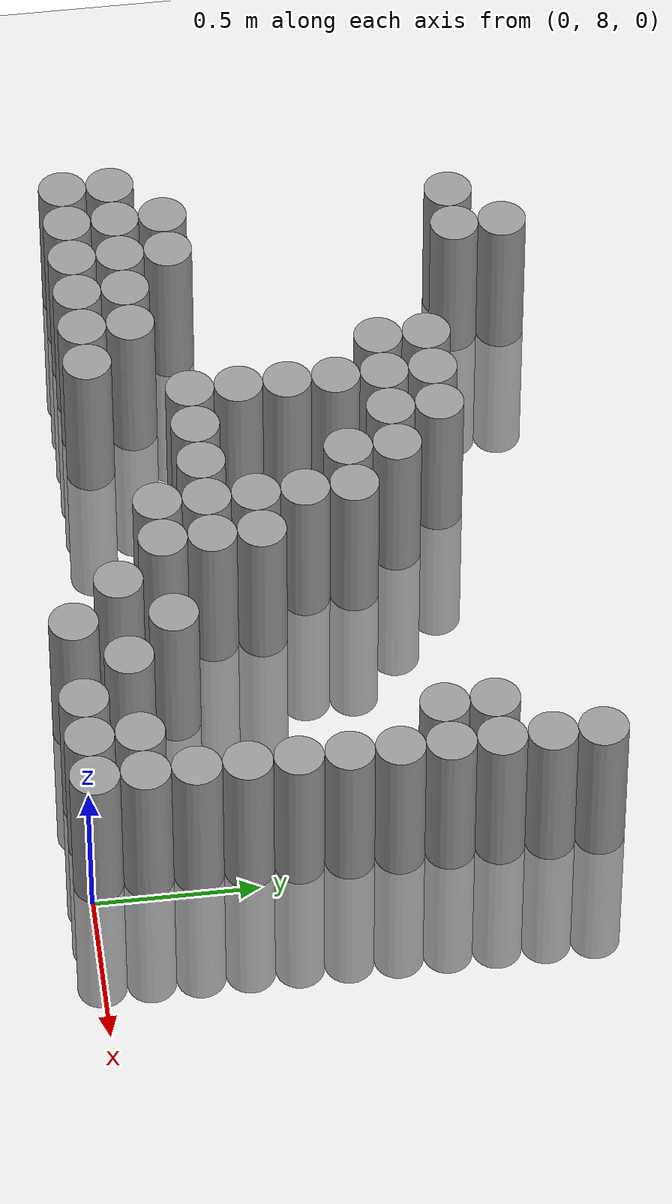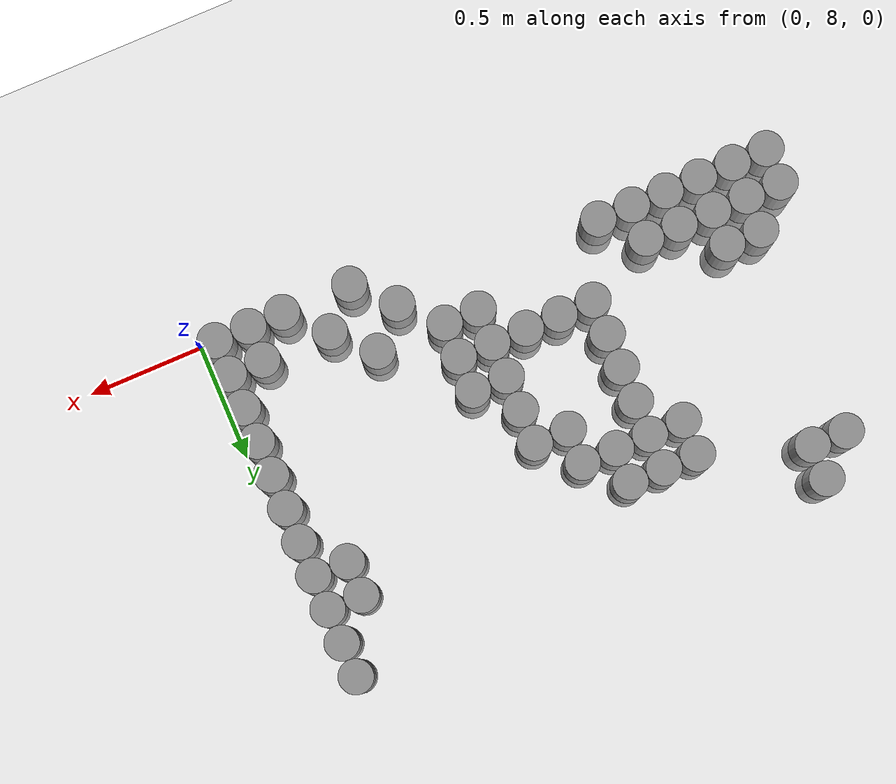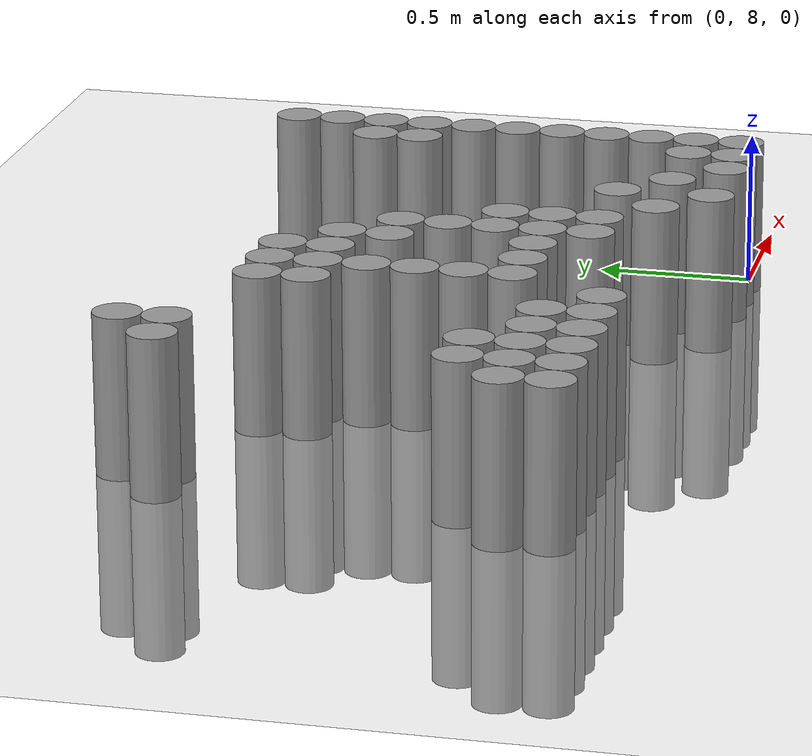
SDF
<sdf version="1.6">
 <world name="default">
  <model name="ground_plane">
   <static>1</static>
   <static>1</static>
   <link name="link">
    <collision name="collision">
     <geometry><plane><normal>0 0 1</normal><size>100 100</size></plane></geometry>
     <surface><friction><ode><mu>100</mu><mu2>50</mu2></ode></friction></surface>
    </collision>
    <visual name="visual">
     <cast_shadows>0</cast_shadows>
     <geometry><plane><normal>0 0 1</normal><size>100 100</size></plane></geometry>
     <material>
      <script><uri>file://media/materials/scripts/gazebo.material</uri><name>Gazebo/Grey</name></script>
     </material>
    </visual>
   </link>
  </model>
  <model name="unit_cylinder_175">
   <static>1</static>
   <pose>-2.475000 8.175000 0.000000 0.000000 0.000000 0.000000</pose>
   <link name="link">
    <inertial>
     <mass>1</mass>
     <inertia><ixx>0.145833</ixx><ixy>0</ixy><ixz>0</ixz><iyy>0.145833</iyy><iyz>0</iyz><izz>0.125</izz></inertia>
    </inertial>
    <collision name="collision">
     <geometry><cylinder><radius>0.075000</radius><length>1</length></cylinder></geometry>
    </collision>
    <visual name="visual">
     <geometry><cylinder><radius>0.075000</radius><length>1</length></cylinder></geometry>
     <material>
      <script><name>Gazebo/Grey</name><uri>file://media/materials/scripts/gazebo.material</uri></script>
     </material>
    </visual>
   </link>
  </model>
  <model name="unit_cylinder_176">
   <static>1</static>
   <pose>-2.475000 8.325000 0.000000 0.000000 0.000000 0.000000</pose>
   <link name="link">
    <inertial>
     <mass>1</mass>
     <inertia><ixx>0.145833</ixx><ixy>0</ixy><ixz>0</ixz><iyy>0.145833</iyy><iyz>0</iyz><izz>0.125</izz></inertia>
    </inertial>
    <collision name="collision">
     <geometry><cylinder><radius>0.075000</radius><length>1</length></cylinder></geometry>
    </collision>
    <visual name="visual">
     <geometry><cylinder><radius>0.075000</radius><length>1</length></cylinder></geometry>
     <material>
      <script><name>Gazebo/Grey</name><uri>file://media/materials/scripts/gazebo.material</uri></script>
     </material>
    </visual>
   </link>
  </model>
  <model name="unit_cylinder_184">
   <static>1</static>
   <pose>-2.325000 8.175000 0.000000 0.000000 0.000000 0.000000</pose>
   <link name="link">
    <inertial>
     <mass>1</mass>
     <inertia><ixx>0.145833</ixx><ixy>0</ixy><ixz>0</ixz><iyy>0.145833</iyy><iyz>0</iyz><izz>0.125</izz></inertia>
    </inertial>
    <collision name="collision">
     <geometry><cylinder><radius>0.075000</radius><length>1</length></cylinder></geometry>
    </collision>
    <visual name="visual">
     <geometry><cylinder><radius>0.075000</radius><length>1</length></cylinder></geometry>
     <material>
      <script><name>Gazebo/Grey</name><uri>file://media/materials/scripts/gazebo.material</uri></script>
     </material>
    </visual>
   </link>
  </model>
  <model name="unit_cylinder_185">
   <static>1</static>
   <pose>-2.325000 8.325000 0.000000 0.000000 0.000000 0.000000</pose>
   <link name="link">
    <inertial>
     <mass>1</mass>
     <inertia><ixx>0.145833</ixx><ixy>0</ixy><ixz>0</ixz><iyy>0.145833</iyy><iyz>0</iyz><izz>0.125</izz></inertia>
    </inertial>
    <collision name="collision">
     <geometry><cylinder><radius>0.075000</radius><length>1</length></cylinder></geometry>
    </collision>
    <visual name="visual">
     <geometry><cylinder><radius>0.075000</radius><length>1</length></cylinder></geometry>
     <material>
      <script><name>Gazebo/Grey</name><uri>file://media/materials/scripts/gazebo.material</uri></script>
     </material>
    </visual>
   </link>
  </model>
  <model name="unit_cylinder_186">
   <static>1</static>
   <pose>-2.325000 8.475000 0.000000 0.000000 0.000000 0.000000</pose>
   <link name="link">
    <inertial>
     <mass>1</mass>
     <inertia><ixx>0.145833</ixx><ixy>0</ixy><ixz>0</ixz><iyy>0.145833</iyy><iyz>0</iyz><izz>0.125</izz></inertia>
    </inertial>
    <collision name="collision">
     <geometry><cylinder><radius>0.075000</radius><length>1</length></cylinder></geometry>
    </collision>
    <visual name="visual">
     <geometry><cylinder><radius>0.075000</radius><length>1</length></cylinder></geometry>
     <material>
      <script><name>Gazebo/Grey</name><uri>file://media/materials/scripts/gazebo.material</uri></script>
     </material>
    </visual>
   </link>
  </model>
  <model name="unit_cylinder_187">
   <static>1</static>
   <pose>-2.325000 9.375000 0.000000 0.000000 0.000000 0.000000</pose>
   <link name="link">
    <inertial>
     <mass>1</mass>
     <inertia><ixx>0.145833</ixx><ixy>0</ixy><ixz>0</ixz><iyy>0.145833</iyy><iyz>0</iyz><izz>0.125</izz></inertia>
    </inertial>
    <collision name="collision">
     <geometry><cylinder><radius>0.075000</radius><length>1</length></cylinder></geometry>
    </collision>
    <visual name="visual">
     <geometry><cylinder><radius>0.075000</radius><length>1</length></cylinder></geometry>
     <material>
      <script><name>Gazebo/Grey</name><uri>file://media/materials/scripts/gazebo.material</uri></script>
     </material>
    </visual>
   </link>
  </model>
  <model name="unit_cylinder_193">
   <static>1</static>
   <pose>-2.175000 8.175000 0.000000 0.000000 0.000000 0.000000</pose>
   <link name="link">
    <inertial>
     <mass>1</mass>
     <inertia><ixx>0.145833</ixx><ixy>0</ixy><ixz>0</ixz><iyy>0.145833</iyy><iyz>0</iyz><izz>0.125</izz></inertia>
    </inertial>
    <collision name="collision">
     <geometry><cylinder><radius>0.075000</radius><length>1</length></cylinder></geometry>
    </collision>
    <visual name="visual">
     <geometry><cylinder><radius>0.075000</radius><length>1</length></cylinder></geometry>
     <material>
      <script><name>Gazebo/Grey</name><uri>file://media/materials/scripts/gazebo.material</uri></script>
     </material>
    </visual>
   </link>
  </model>
  <model name="unit_cylinder_194">
   <static>1</static>
   <pose>-2.175000 8.325000 0.000000 0.000000 0.000000 0.000000</pose>
   <link name="link">
    <inertial>
     <mass>1</mass>
     <inertia><ixx>0.145833</ixx><ixy>0</ixy><ixz>0</ixz><iyy>0.145833</iyy><iyz>0</iyz><izz>0.125</izz></inertia>
    </inertial>
    <collision name="collision">
     <geometry><cylinder><radius>0.075000</radius><length>1</length></cylinder></geometry>
    </collision>
    <visual name="visual">
     <geometry><cylinder><radius>0.075000</radius><length>1</length></cylinder></geometry>
     <material>
      <script><name>Gazebo/Grey</name><uri>file://media/materials/scripts/gazebo.material</uri></script>
     </material>
    </visual>
   </link>
  </model>
  <model name="unit_cylinder_195">
   <static>1</static>
   <pose>-2.175000 8.475000 0.000000 0.000000 0.000000 0.000000</pose>
   <link name="link">
    <inertial>
     <mass>1</mass>
     <inertia><ixx>0.145833</ixx><ixy>0</ixy><ixz>0</ixz><iyy>0.145833</iyy><iyz>0</iyz><izz>0.125</izz></inertia>
    </inertial>
    <collision name="collision">
     <geometry><cylinder><radius>0.075000</radius><length>1</length></cylinder></geometry>
    </collision>
    <visual name="visual">
     <geometry><cylinder><radius>0.075000</radius><length>1</length></cylinder></geometry>
     <material>
      <script><name>Gazebo/Grey</name><uri>file://media/materials/scripts/gazebo.material</uri></script>
     </material>
    </visual>
   </link>
  </model>
  <model name="unit_cylinder_196">
   <static>1</static>
   <pose>-2.175000 9.375000 0.000000 0.000000 0.000000 0.000000</pose>
   <link name="link">
    <inertial>
     <mass>1</mass>
     <inertia><ixx>0.145833</ixx><ixy>0</ixy><ixz>0</ixz><iyy>0.145833</iyy><iyz>0</iyz><izz>0.125</izz></inertia>
    </inertial>
    <collision name="collision">
     <geometry><cylinder><radius>0.075000</radius><length>1</length></cylinder></geometry>
    </collision>
    <visual name="visual">
     <geometry><cylinder><radius>0.075000</radius><length>1</length></cylinder></geometry>
     <material>
      <script><name>Gazebo/Grey</name><uri>file://media/materials/scripts/gazebo.material</uri></script>
     </material>
    </visual>
   </link>
  </model>
  <model name="unit_cylinder_197">
   <static>1</static>
   <pose>-2.175000 9.525000 0.000000 0.000000 0.000000 0.000000</pose>
   <link name="link">
    <inertial>
     <mass>1</mass>
     <inertia><ixx>0.145833</ixx><ixy>0</ixy><ixz>0</ixz><iyy>0.145833</iyy><iyz>0</iyz><izz>0.125</izz></inertia>
    </inertial>
    <collision name="collision">
     <geometry><cylinder><radius>0.075000</radius><length>1</length></cylinder></geometry>
    </collision>
    <visual name="visual">
     <geometry><cylinder><radius>0.075000</radius><length>1</length></cylinder></geometry>
     <material>
      <script><name>Gazebo/Grey</name><uri>file://media/materials/scripts/gazebo.material</uri></script>
     </material>
    </visual>
   </link>
  </model>
  <model name="unit_cylinder_198">
   <static>1</static>
   <pose>-2.025000 8.175000 0.000000 0.000000 0.000000 0.000000</pose>
   <link name="link">
    <inertial>
     <mass>1</mass>
     <inertia><ixx>0.145833</ixx><ixy>0</ixy><ixz>0</ixz><iyy>0.145833</iyy><iyz>0</iyz><izz>0.125</izz></inertia>
    </inertial>
    <collision name="collision">
     <geometry><cylinder><radius>0.075000</radius><length>1</length></cylinder></geometry>
    </collision>
    <visual name="visual">
     <geometry><cylinder><radius>0.075000</radius><length>1</length></cylinder></geometry>
     <material>
      <script><name>Gazebo/Grey</name><uri>file://media/materials/scripts/gazebo.material</uri></script>
     </material>
    </visual>
   </link>
  </model>
  <model name="unit_cylinder_199">
   <static>1</static>
   <pose>-2.025000 8.325000 0.000000 0.000000 0.000000 0.000000</pose>
   <link name="link">
    <inertial>
     <mass>1</mass>
     <inertia><ixx>0.145833</ixx><ixy>0</ixy><ixz>0</ixz><iyy>0.145833</iyy><iyz>0</iyz><izz>0.125</izz></inertia>
    </inertial>
    <collision name="collision">
     <geometry><cylinder><radius>0.075000</radius><length>1</length></cylinder></geometry>
    </collision>
    <visual name="visual">
     <geometry><cylinder><radius>0.075000</radius><length>1</length></cylinder></geometry>
     <material>
      <script><name>Gazebo/Grey</name><uri>file://media/materials/scripts/gazebo.material</uri></script>
     </material>
    </visual>
   </link>
  </model>
  <model name="unit_cylinder_200">
   <static>1</static>
   <pose>-1.875000 8.175000 0.000000 0.000000 0.000000 0.000000</pose>
   <link name="link">
    <inertial>
     <mass>1</mass>
     <inertia><ixx>0.145833</ixx><ixy>0</ixy><ixz>0</ixz><iyy>0.145833</iyy><iyz>0</iyz><izz>0.125</izz></inertia>
    </inertial>
    <collision name="collision">
     <geometry><cylinder><radius>0.075000</radius><length>1</length></cylinder></geometry>
    </collision>
    <visual name="visual">
     <geometry><cylinder><radius>0.075000</radius><length>1</length></cylinder></geometry>
     <material>
      <script><name>Gazebo/Grey</name><uri>file://media/materials/scripts/gazebo.material</uri></script>
     </material>
    </visual>
   </link>
  </model>
  <model name="unit_cylinder_201">
   <static>1</static>
   <pose>-1.875000 8.325000 0.000000 0.000000 0.000000 0.000000</pose>
   <link name="link">
    <inertial>
     <mass>1</mass>
     <inertia><ixx>0.145833</ixx><ixy>0</ixy><ixz>0</ixz><iyy>0.145833</iyy><iyz>0</iyz><izz>0.125</izz></inertia>
    </inertial>
    <collision name="collision">
     <geometry><cylinder><radius>0.075000</radius><length>1</length></cylinder></geometry>
    </collision>
    <visual name="visual">
     <geometry><cylinder><radius>0.075000</radius><length>1</length></cylinder></geometry>
     <material>
      <script><name>Gazebo/Grey</name><uri>file://media/materials/scripts/gazebo.material</uri></script>
     </material>
    </visual>
   </link>
  </model>
  <model name="unit_cylinder_206">
   <static>1</static>
   <pose>-1.725000 8.175000 0.000000 0.000000 0.000000 0.000000</pose>
   <link name="link">
    <inertial>
     <mass>1</mass>
     <inertia><ixx>0.145833</ixx><ixy>0</ixy><ixz>0</ixz><iyy>0.145833</iyy><iyz>0</iyz><izz>0.125</izz></inertia>
    </inertial>
    <collision name="collision">
     <geometry><cylinder><radius>0.075000</radius><length>1</length></cylinder></geometry>
    </collision>
    <visual name="visual">
     <geometry><cylinder><radius>0.075000</radius><length>1</length></cylinder></geometry>
     <material>
      <script><name>Gazebo/Grey</name><uri>file://media/materials/scripts/gazebo.material</uri></script>
     </material>
    </visual>
   </link>
  </model>
  <model name="unit_cylinder_207">
   <static>1</static>
   <pose>-1.725000 9.075000 0.000000 0.000000 0.000000 0.000000</pose>
   <link name="link">
    <inertial>
     <mass>1</mass>
     <inertia><ixx>0.145833</ixx><ixy>0</ixy><ixz>0</ixz><iyy>0.145833</iyy><iyz>0</iyz><izz>0.125</izz></inertia>
    </inertial>
    <collision name="collision">
     <geometry><cylinder><radius>0.075000</radius><length>1</length></cylinder></geometry>
    </collision>
    <visual name="visual">
     <geometry><cylinder><radius>0.075000</radius><length>1</length></cylinder></geometry>
     <material>
      <script><name>Gazebo/Grey</name><uri>file://media/materials/scripts/gazebo.material</uri></script>
     </material>
    </visual>
   </link>
  </model>
  <model name="unit_cylinder_208">
   <static>1</static>
   <pose>-1.725000 9.225000 0.000000 0.000000 0.000000 0.000000</pose>
   <link name="link">
    <inertial>
     <mass>1</mass>
     <inertia><ixx>0.145833</ixx><ixy>0</ixy><ixz>0</ixz><iyy>0.145833</iyy><iyz>0</iyz><izz>0.125</izz></inertia>
    </inertial>
    <collision name="collision">
     <geometry><cylinder><radius>0.075000</radius><length>1</length></cylinder></geometry>
    </collision>
    <visual name="visual">
     <geometry><cylinder><radius>0.075000</radius><length>1</length></cylinder></geometry>
     <material>
      <script><name>Gazebo/Grey</name><uri>file://media/materials/scripts/gazebo.material</uri></script>
     </material>
    </visual>
   </link>
  </model>
  <model name="unit_cylinder_213">
   <static>1</static>
   <pose>-1.575000 8.475000 0.000000 0.000000 0.000000 0.000000</pose>
   <link name="link">
    <inertial>
     <mass>1</mass>
     <inertia><ixx>0.145833</ixx><ixy>0</ixy><ixz>0</ixz><iyy>0.145833</iyy><iyz>0</iyz><izz>0.125</izz></inertia>
    </inertial>
    <collision name="collision">
     <geometry><cylinder><radius>0.075000</radius><length>1</length></cylinder></geometry>
    </collision>
    <visual name="visual">
     <geometry><cylinder><radius>0.075000</radius><length>1</length></cylinder></geometry>
     <material>
      <script><name>Gazebo/Grey</name><uri>file://media/materials/scripts/gazebo.material</uri></script>
     </material>
    </visual>
   </link>
  </model>
  <model name="unit_cylinder_214">
   <static>1</static>
   <pose>-1.575000 8.625000 0.000000 0.000000 0.000000 0.000000</pose>
   <link name="link">
    <inertial>
     <mass>1</mass>
     <inertia><ixx>0.145833</ixx><ixy>0</ixy><ixz>0</ixz><iyy>0.145833</iyy><iyz>0</iyz><izz>0.125</izz></inertia>
    </inertial>
    <collision name="collision">
     <geometry><cylinder><radius>0.075000</radius><length>1</length></cylinder></geometry>
    </collision>
    <visual name="visual">
     <geometry><cylinder><radius>0.075000</radius><length>1</length></cylinder></geometry>
     <material>
      <script><name>Gazebo/Grey</name><uri>file://media/materials/scripts/gazebo.material</uri></script>
     </material>
    </visual>
   </link>
  </model>
  <model name="unit_cylinder_215">
   <static>1</static>
   <pose>-1.575000 8.775000 0.000000 0.000000 0.000000 0.000000</pose>
   <link name="link">
    <inertial>
     <mass>1</mass>
     <inertia><ixx>0.145833</ixx><ixy>0</ixy><ixz>0</ixz><iyy>0.145833</iyy><iyz>0</iyz><izz>0.125</izz></inertia>
    </inertial>
    <collision name="collision">
     <geometry><cylinder><radius>0.075000</radius><length>1</length></cylinder></geometry>
    </collision>
    <visual name="visual">
     <geometry><cylinder><radius>0.075000</radius><length>1</length></cylinder></geometry>
     <material>
      <script><name>Gazebo/Grey</name><uri>file://media/materials/scripts/gazebo.material</uri></script>
     </material>
    </visual>
   </link>
  </model>
  <model name="unit_cylinder_216">
   <static>1</static>
   <pose>-1.575000 8.925000 0.000000 0.000000 0.000000 0.000000</pose>
   <link name="link">
    <inertial>
     <mass>1</mass>
     <inertia><ixx>0.145833</ixx><ixy>0</ixy><ixz>0</ixz><iyy>0.145833</iyy><iyz>0</iyz><izz>0.125</izz></inertia>
    </inertial>
    <collision name="collision">
     <geometry><cylinder><radius>0.075000</radius><length>1</length></cylinder></geometry>
    </collision>
    <visual name="visual">
     <geometry><cylinder><radius>0.075000</radius><length>1</length></cylinder></geometry>
     <material>
      <script><name>Gazebo/Grey</name><uri>file://media/materials/scripts/gazebo.material</uri></script>
     </material>
    </visual>
   </link>
  </model>
  <model name="unit_cylinder_217">
   <static>1</static>
   <pose>-1.575000 9.075000 0.000000 0.000000 0.000000 0.000000</pose>
   <link name="link">
    <inertial>
     <mass>1</mass>
     <inertia><ixx>0.145833</ixx><ixy>0</ixy><ixz>0</ixz><iyy>0.145833</iyy><iyz>0</iyz><izz>0.125</izz></inertia>
    </inertial>
    <collision name="collision">
     <geometry><cylinder><radius>0.075000</radius><length>1</length></cylinder></geometry>
    </collision>
    <visual name="visual">
     <geometry><cylinder><radius>0.075000</radius><length>1</length></cylinder></geometry>
     <material>
      <script><name>Gazebo/Grey</name><uri>file://media/materials/scripts/gazebo.material</uri></script>
     </material>
    </visual>
   </link>
  </model>
  <model name="unit_cylinder_218">
   <static>1</static>
   <pose>-1.575000 9.225000 0.000000 0.000000 0.000000 0.000000</pose>
   <link name="link">
    <inertial>
     <mass>1</mass>
     <inertia><ixx>0.145833</ixx><ixy>0</ixy><ixz>0</ixz><iyy>0.145833</iyy><iyz>0</iyz><izz>0.125</izz></inertia>
    </inertial>
    <collision name="collision">
     <geometry><cylinder><radius>0.075000</radius><length>1</length></cylinder></geometry>
    </collision>
    <visual name="visual">
     <geometry><cylinder><radius>0.075000</radius><length>1</length></cylinder></geometry>
     <material>
      <script><name>Gazebo/Grey</name><uri>file://media/materials/scripts/gazebo.material</uri></script>
     </material>
    </visual>
   </link>
  </model>
  <model name="unit_cylinder_221">
   <static>1</static>
   <pose>-1.425000 8.475000 0.000000 0.000000 0.000000 0.000000</pose>
   <link name="link">
    <inertial>
     <mass>1</mass>
     <inertia><ixx>0.145833</ixx><ixy>0</ixy><ixz>0</ixz><iyy>0.145833</iyy><iyz>0</iyz><izz>0.125</izz></inertia>
    </inertial>
    <collision name="collision">
     <geometry><cylinder><radius>0.075000</radius><length>1</length></cylinder></geometry>
    </collision>
    <visual name="visual">
     <geometry><cylinder><radius>0.075000</radius><length>1</length></cylinder></geometry>
     <material>
      <script><name>Gazebo/Grey</name><uri>file://media/materials/scripts/gazebo.material</uri></script>
     </material>
    </visual>
   </link>
  </model>
  <model name="unit_cylinder_222">
   <static>1</static>
   <pose>-1.425000 9.075000 0.000000 0.000000 0.000000 0.000000</pose>
   <link name="link">
    <inertial>
     <mass>1</mass>
     <inertia><ixx>0.145833</ixx><ixy>0</ixy><ixz>0</ixz><iyy>0.145833</iyy><iyz>0</iyz><izz>0.125</izz></inertia>
    </inertial>
    <collision name="collision">
     <geometry><cylinder><radius>0.075000</radius><length>1</length></cylinder></geometry>
    </collision>
    <visual name="visual">
     <geometry><cylinder><radius>0.075000</radius><length>1</length></cylinder></geometry>
     <material>
      <script><name>Gazebo/Grey</name><uri>file://media/materials/scripts/gazebo.material</uri></script>
     </material>
    </visual>
   </link>
  </model>
  <model name="unit_cylinder_223">
   <static>1</static>
   <pose>-1.425000 9.225000 0.000000 0.000000 0.000000 0.000000</pose>
   <link name="link">
    <inertial>
     <mass>1</mass>
     <inertia><ixx>0.145833</ixx><ixy>0</ixy><ixz>0</ixz><iyy>0.145833</iyy><iyz>0</iyz><izz>0.125</izz></inertia>
    </inertial>
    <collision name="collision">
     <geometry><cylinder><radius>0.075000</radius><length>1</length></cylinder></geometry>
    </collision>
    <visual name="visual">
     <geometry><cylinder><radius>0.075000</radius><length>1</length></cylinder></geometry>
     <material>
      <script><name>Gazebo/Grey</name><uri>file://media/materials/scripts/gazebo.material</uri></script>
     </material>
    </visual>
   </link>
  </model>
  <model name="unit_cylinder_224">
   <static>1</static>
   <pose>-1.275000 8.475000 0.000000 0.000000 0.000000 0.000000</pose>
   <link name="link">
    <inertial>
     <mass>1</mass>
     <inertia><ixx>0.145833</ixx><ixy>0</ixy><ixz>0</ixz><iyy>0.145833</iyy><iyz>0</iyz><izz>0.125</izz></inertia>
    </inertial>
    <collision name="collision">
     <geometry><cylinder><radius>0.075000</radius><length>1</length></cylinder></geometry>
    </collision>
    <visual name="visual">
     <geometry><cylinder><radius>0.075000</radius><length>1</length></cylinder></geometry>
     <material>
      <script><name>Gazebo/Grey</name><uri>file://media/materials/scripts/gazebo.material</uri></script>
     </material>
    </visual>
   </link>
  </model>
  <model name="unit_cylinder_225">
   <static>1</static>
   <pose>-1.275000 8.925000 0.000000 0.000000 0.000000 0.000000</pose>
   <link name="link">
    <inertial>
     <mass>1</mass>
     <inertia><ixx>0.145833</ixx><ixy>0</ixy><ixz>0</ixz><iyy>0.145833</iyy><iyz>0</iyz><izz>0.125</izz></inertia>
    </inertial>
    <collision name="collision">
     <geometry><cylinder><radius>0.075000</radius><length>1</length></cylinder></geometry>
    </collision>
    <visual name="visual">
     <geometry><cylinder><radius>0.075000</radius><length>1</length></cylinder></geometry>
     <material>
      <script><name>Gazebo/Grey</name><uri>file://media/materials/scripts/gazebo.material</uri></script>
     </material>
    </visual>
   </link>
  </model>
  <model name="unit_cylinder_226">
   <static>1</static>
   <pose>-1.275000 9.075000 0.000000 0.000000 0.000000 0.000000</pose>
   <link name="link">
    <inertial>
     <mass>1</mass>
     <inertia><ixx>0.145833</ixx><ixy>0</ixy><ixz>0</ixz><iyy>0.145833</iyy><iyz>0</iyz><izz>0.125</izz></inertia>
    </inertial>
    <collision name="collision">
     <geometry><cylinder><radius>0.075000</radius><length>1</length></cylinder></geometry>
    </collision>
    <visual name="visual">
     <geometry><cylinder><radius>0.075000</radius><length>1</length></cylinder></geometry>
     <material>
      <script><name>Gazebo/Grey</name><uri>file://media/materials/scripts/gazebo.material</uri></script>
     </material>
    </visual>
   </link>
  </model>
  <model name="unit_cylinder_228">
   <static>1</static>
   <pose>-1.125000 8.325000 0.000000 0.000000 0.000000 0.000000</pose>
   <link name="link">
    <inertial>
     <mass>1</mass>
     <inertia><ixx>0.145833</ixx><ixy>0</ixy><ixz>0</ixz><iyy>0.145833</iyy><iyz>0</iyz><izz>0.125</izz></inertia>
    </inertial>
    <collision name="collision">
     <geometry><cylinder><radius>0.075000</radius><length>1</length></cylinder></geometry>
    </collision>
    <visual name="visual">
     <geometry><cylinder><radius>0.075000</radius><length>1</length></cylinder></geometry>
     <material>
      <script><name>Gazebo/Grey</name><uri>file://media/materials/scripts/gazebo.material</uri></script>
     </material>
    </visual>
   </link>
  </model>
  <model name="unit_cylinder_229">
   <static>1</static>
   <pose>-1.125000 8.475000 0.000000 0.000000 0.000000 0.000000</pose>
   <link name="link">
    <inertial>
     <mass>1</mass>
     <inertia><ixx>0.145833</ixx><ixy>0</ixy><ixz>0</ixz><iyy>0.145833</iyy><iyz>0</iyz><izz>0.125</izz></inertia>
    </inertial>
    <collision name="collision">
     <geometry><cylinder><radius>0.075000</radius><length>1</length></cylinder></geometry>
    </collision>
    <visual name="visual">
     <geometry><cylinder><radius>0.075000</radius><length>1</length></cylinder></geometry>
     <material>
      <script><name>Gazebo/Grey</name><uri>file://media/materials/scripts/gazebo.material</uri></script>
     </material>
    </visual>
   </link>
  </model>
  <model name="unit_cylinder_230">
   <static>1</static>
   <pose>-1.125000 8.625000 0.000000 0.000000 0.000000 0.000000</pose>
   <link name="link">
    <inertial>
     <mass>1</mass>
     <inertia><ixx>0.145833</ixx><ixy>0</ixy><ixz>0</ixz><iyy>0.145833</iyy><iyz>0</iyz><izz>0.125</izz></inertia>
    </inertial>
    <collision name="collision">
     <geometry><cylinder><radius>0.075000</radius><length>1</length></cylinder></geometry>
    </collision>
    <visual name="visual">
     <geometry><cylinder><radius>0.075000</radius><length>1</length></cylinder></geometry>
     <material>
      <script><name>Gazebo/Grey</name><uri>file://media/materials/scripts/gazebo.material</uri></script>
     </material>
    </visual>
   </link>
  </model>
  <model name="unit_cylinder_231">
   <static>1</static>
   <pose>-1.125000 8.775000 0.000000 0.000000 0.000000 0.000000</pose>
   <link name="link">
    <inertial>
     <mass>1</mass>
     <inertia><ixx>0.145833</ixx><ixy>0</ixy><ixz>0</ixz><iyy>0.145833</iyy><iyz>0</iyz><izz>0.125</izz></inertia>
    </inertial>
    <collision name="collision">
     <geometry><cylinder><radius>0.075000</radius><length>1</length></cylinder></geometry>
    </collision>
    <visual name="visual">
     <geometry><cylinder><radius>0.075000</radius><length>1</length></cylinder></geometry>
     <material>
      <script><name>Gazebo/Grey</name><uri>file://media/materials/scripts/gazebo.material</uri></script>
     </material>
    </visual>
   </link>
  </model>
  <model name="unit_cylinder_232">
   <static>1</static>
   <pose>-1.125000 8.925000 0.000000 0.000000 0.000000 0.000000</pose>
   <link name="link">
    <inertial>
     <mass>1</mass>
     <inertia><ixx>0.145833</ixx><ixy>0</ixy><ixz>0</ixz><iyy>0.145833</iyy><iyz>0</iyz><izz>0.125</izz></inertia>
    </inertial>
    <collision name="collision">
     <geometry><cylinder><radius>0.075000</radius><length>1</length></cylinder></geometry>
    </collision>
    <visual name="visual">
     <geometry><cylinder><radius>0.075000</radius><length>1</length></cylinder></geometry>
     <material>
      <script><name>Gazebo/Grey</name><uri>file://media/materials/scripts/gazebo.material</uri></script>
     </material>
    </visual>
   </link>
  </model>
  <model name="unit_cylinder_236">
   <static>1</static>
   <pose>-0.975000 8.325000 0.000000 0.000000 0.000000 0.000000</pose>
   <link name="link">
    <inertial>
     <mass>1</mass>
     <inertia><ixx>0.145833</ixx><ixy>0</ixy><ixz>0</ixz><iyy>0.145833</iyy><iyz>0</iyz><izz>0.125</izz></inertia>
    </inertial>
    <collision name="collision">
     <geometry><cylinder><radius>0.075000</radius><length>1</length></cylinder></geometry>
    </collision>
    <visual name="visual">
     <geometry><cylinder><radius>0.075000</radius><length>1</length></cylinder></geometry>
     <material>
      <script><name>Gazebo/Grey</name><uri>file://media/materials/scripts/gazebo.material</uri></script>
     </material>
    </visual>
   </link>
  </model>
  <model name="unit_cylinder_237">
   <static>1</static>
   <pose>-0.975000 8.475000 0.000000 0.000000 0.000000 0.000000</pose>
   <link name="link">
    <inertial>
     <mass>1</mass>
     <inertia><ixx>0.145833</ixx><ixy>0</ixy><ixz>0</ixz><iyy>0.145833</iyy><iyz>0</iyz><izz>0.125</izz></inertia>
    </inertial>
    <collision name="collision">
     <geometry><cylinder><radius>0.075000</radius><length>1</length></cylinder></geometry>
    </collision>
    <visual name="visual">
     <geometry><cylinder><radius>0.075000</radius><length>1</length></cylinder></geometry>
     <material>
      <script><name>Gazebo/Grey</name><uri>file://media/materials/scripts/gazebo.material</uri></script>
     </material>
    </visual>
   </link>
  </model>
  <model name="unit_cylinder_238">
   <static>1</static>
   <pose>-0.975000 8.625000 0.000000 0.000000 0.000000 0.000000</pose>
   <link name="link">
    <inertial>
     <mass>1</mass>
     <inertia><ixx>0.145833</ixx><ixy>0</ixy><ixz>0</ixz><iyy>0.145833</iyy><iyz>0</iyz><izz>0.125</izz></inertia>
    </inertial>
    <collision name="collision">
     <geometry><cylinder><radius>0.075000</radius><length>1</length></cylinder></geometry>
    </collision>
    <visual name="visual">
     <geometry><cylinder><radius>0.075000</radius><length>1</length></cylinder></geometry>
     <material>
      <script><name>Gazebo/Grey</name><uri>file://media/materials/scripts/gazebo.material</uri></script>
     </material>
    </visual>
   </link>
  </model>
  <model name="unit_cylinder_241">
   <static>1</static>
   <pose>-0.825000 8.175000 0.000000 0.000000 0.000000 0.000000</pose>
   <link name="link">
    <inertial>
     <mass>1</mass>
     <inertia><ixx>0.145833</ixx><ixy>0</ixy><ixz>0</ixz><iyy>0.145833</iyy><iyz>0</iyz><izz>0.125</izz></inertia>
    </inertial>
    <collision name="collision">
     <geometry><cylinder><radius>0.075000</radius><length>1</length></cylinder></geometry>
    </collision>
    <visual name="visual">
     <geometry><cylinder><radius>0.075000</radius><length>1</length></cylinder></geometry>
     <material>
      <script><name>Gazebo/Grey</name><uri>file://media/materials/scripts/gazebo.material</uri></script>
     </material>
    </visual>
   </link>
  </model>
  <model name="unit_cylinder_242">
   <static>1</static>
   <pose>-0.675000 8.025000 0.000000 0.000000 0.000000 0.000000</pose>
   <link name="link">
    <inertial>
     <mass>1</mass>
     <inertia><ixx>0.145833</ixx><ixy>0</ixy><ixz>0</ixz><iyy>0.145833</iyy><iyz>0</iyz><izz>0.125</izz></inertia>
    </inertial>
    <collision name="collision">
     <geometry><cylinder><radius>0.075000</radius><length>1</length></cylinder></geometry>
    </collision>
    <visual name="visual">
     <geometry><cylinder><radius>0.075000</radius><length>1</length></cylinder></geometry>
     <material>
      <script><name>Gazebo/Grey</name><uri>file://media/materials/scripts/gazebo.material</uri></script>
     </material>
    </visual>
   </link>
  </model>
  <model name="unit_cylinder_243">
   <static>1</static>
   <pose>-0.675000 8.325000 0.000000 0.000000 0.000000 0.000000</pose>
   <link name="link">
    <inertial>
     <mass>1</mass>
     <inertia><ixx>0.145833</ixx><ixy>0</ixy><ixz>0</ixz><iyy>0.145833</iyy><iyz>0</iyz><izz>0.125</izz></inertia>
    </inertial>
    <collision name="collision">
     <geometry><cylinder><radius>0.075000</radius><length>1</length></cylinder></geometry>
    </collision>
    <visual name="visual">
     <geometry><cylinder><radius>0.075000</radius><length>1</length></cylinder></geometry>
     <material>
      <script><name>Gazebo/Grey</name><uri>file://media/materials/scripts/gazebo.material</uri></script>
     </material>
    </visual>
   </link>
  </model>
  <model name="unit_cylinder_244">
   <static>1</static>
   <pose>-0.525000 8.175000 0.000000 0.000000 0.000000 0.000000</pose>
   <link name="link">
    <inertial>
     <mass>1</mass>
     <inertia><ixx>0.145833</ixx><ixy>0</ixy><ixz>0</ixz><iyy>0.145833</iyy><iyz>0</iyz><izz>0.125</izz></inertia>
    </inertial>
    <collision name="collision">
     <geometry><cylinder><radius>0.075000</radius><length>1</length></cylinder></geometry>
    </collision>
    <visual name="visual">
     <geometry><cylinder><radius>0.075000</radius><length>1</length></cylinder></geometry>
     <material>
      <script><name>Gazebo/Grey</name><uri>file://media/materials/scripts/gazebo.material</uri></script>
     </material>
    </visual>
   </link>
  </model>
  <model name="unit_cylinder_246">
   <static>1</static>
   <pose>-0.375000 8.025000 0.000000 0.000000 0.000000 0.000000</pose>
   <link name="link">
    <inertial>
     <mass>1</mass>
     <inertia><ixx>0.145833</ixx><ixy>0</ixy><ixz>0</ixz><iyy>0.145833</iyy><iyz>0</iyz><izz>0.125</izz></inertia>
    </inertial>
    <collision name="collision">
     <geometry><cylinder><radius>0.075000</radius><length>1</length></cylinder></geometry>
    </collision>
    <visual name="visual">
     <geometry><cylinder><radius>0.075000</radius><length>1</length></cylinder></geometry>
     <material>
      <script><name>Gazebo/Grey</name><uri>file://media/materials/scripts/gazebo.material</uri></script>
     </material>
    </visual>
   </link>
  </model>
  <model name="unit_cylinder_254">
   <static>1</static>
   <pose>-0.225000 8.025000 0.000000 0.000000 0.000000 0.000000</pose>
   <link name="link">
    <inertial>
     <mass>1</mass>
     <inertia><ixx>0.145833</ixx><ixy>0</ixy><ixz>0</ixz><iyy>0.145833</iyy><iyz>0</iyz><izz>0.125</izz></inertia>
    </inertial>
    <collision name="collision">
     <geometry><cylinder><radius>0.075000</radius><length>1</length></cylinder></geometry>
    </collision>
    <visual name="visual">
     <geometry><cylinder><radius>0.075000</radius><length>1</length></cylinder></geometry>
     <material>
      <script><name>Gazebo/Grey</name><uri>file://media/materials/scripts/gazebo.material</uri></script>
     </material>
    </visual>
   </link>
  </model>
  <model name="unit_cylinder_255">
   <static>1</static>
   <pose>-0.225000 8.175000 0.000000 0.000000 0.000000 0.000000</pose>
   <link name="link">
    <inertial>
     <mass>1</mass>
     <inertia><ixx>0.145833</ixx><ixy>0</ixy><ixz>0</ixz><iyy>0.145833</iyy><iyz>0</iyz><izz>0.125</izz></inertia>
    </inertial>
    <collision name="collision">
     <geometry><cylinder><radius>0.075000</radius><length>1</length></cylinder></geometry>
    </collision>
    <visual name="visual">
     <geometry><cylinder><radius>0.075000</radius><length>1</length></cylinder></geometry>
     <material>
      <script><name>Gazebo/Grey</name><uri>file://media/materials/scripts/gazebo.material</uri></script>
     </material>
    </visual>
   </link>
  </model>
  <model name="unit_cylinder_256">
   <static>1</static>
   <pose>-0.225000 9.075000 0.000000 0.000000 0.000000 0.000000</pose>
   <link name="link">
    <inertial>
     <mass>1</mass>
     <inertia><ixx>0.145833</ixx><ixy>0</ixy><ixz>0</ixz><iyy>0.145833</iyy><iyz>0</iyz><izz>0.125</izz></inertia>
    </inertial>
    <collision name="collision">
     <geometry><cylinder><radius>0.075000</radius><length>1</length></cylinder></geometry>
    </collision>
    <visual name="visual">
     <geometry><cylinder><radius>0.075000</radius><length>1</length></cylinder></geometry>
     <material>
      <script><name>Gazebo/Grey</name><uri>file://media/materials/scripts/gazebo.material</uri></script>
     </material>
    </visual>
   </link>
  </model>
  <model name="unit_cylinder_257">
   <static>1</static>
   <pose>-0.225000 9.225000 0.000000 0.000000 0.000000 0.000000</pose>
   <link name="link">
    <inertial>
     <mass>1</mass>
     <inertia><ixx>0.145833</ixx><ixy>0</ixy><ixz>0</ixz><iyy>0.145833</iyy><iyz>0</iyz><izz>0.125</izz></inertia>
    </inertial>
    <collision name="collision">
     <geometry><cylinder><radius>0.075000</radius><length>1</length></cylinder></geometry>
    </collision>
    <visual name="visual">
     <geometry><cylinder><radius>0.075000</radius><length>1</length></cylinder></geometry>
     <material>
      <script><name>Gazebo/Grey</name><uri>file://media/materials/scripts/gazebo.material</uri></script>
     </material>
    </visual>
   </link>
  </model>
  <model name="unit_cylinder_277">
   <static>1</static>
   <pose>-0.075000 8.025000 0.000000 0.000000 0.000000 0.000000</pose>
   <link name="link">
    <inertial>
     <mass>1</mass>
     <inertia><ixx>0.145833</ixx><ixy>0</ixy><ixz>0</ixz><iyy>0.145833</iyy><iyz>0</iyz><izz>0.125</izz></inertia>
    </inertial>
    <collision name="collision">
     <geometry><cylinder><radius>0.075000</radius><length>1</length></cylinder></geometry>
    </collision>
    <visual name="visual">
     <geometry><cylinder><radius>0.075000</radius><length>1</length></cylinder></geometry>
     <material>
      <script><name>Gazebo/Grey</name><uri>file://media/materials/scripts/gazebo.material</uri></script>
     </material>
    </visual>
   </link>
  </model>
  <model name="unit_cylinder_278">
   <static>1</static>
   <pose>-0.075000 8.175000 0.000000 0.000000 0.000000 0.000000</pose>
   <link name="link">
    <inertial>
     <mass>1</mass>
     <inertia><ixx>0.145833</ixx><ixy>0</ixy><ixz>0</ixz><iyy>0.145833</iyy><iyz>0</iyz><izz>0.125</izz></inertia>
    </inertial>
    <collision name="collision">
     <geometry><cylinder><radius>0.075000</radius><length>1</length></cylinder></geometry>
    </collision>
    <visual name="visual">
     <geometry><cylinder><radius>0.075000</radius><length>1</length></cylinder></geometry>
     <material>
      <script><name>Gazebo/Grey</name><uri>file://media/materials/scripts/gazebo.material</uri></script>
     </material>
    </visual>
   </link>
  </model>
  <model name="unit_cylinder_279">
   <static>1</static>
   <pose>-0.075000 8.325000 0.000000 0.000000 0.000000 0.000000</pose>
   <link name="link">
    <inertial>
     <mass>1</mass>
     <inertia><ixx>0.145833</ixx><ixy>0</ixy><ixz>0</ixz><iyy>0.145833</iyy><iyz>0</iyz><izz>0.125</izz></inertia>
    </inertial>
    <collision name="collision">
     <geometry><cylinder><radius>0.075000</radius><length>1</length></cylinder></geometry>
    </collision>
    <visual name="visual">
     <geometry><cylinder><radius>0.075000</radius><length>1</length></cylinder></geometry>
     <material>
      <script><name>Gazebo/Grey</name><uri>file://media/materials/scripts/gazebo.material</uri></script>
     </material>
    </visual>
   </link>
  </model>
  <model name="unit_cylinder_280">
   <static>1</static>
   <pose>-0.075000 8.475000 0.000000 0.000000 0.000000 0.000000</pose>
   <link name="link">
    <inertial>
     <mass>1</mass>
     <inertia><ixx>0.145833</ixx><ixy>0</ixy><ixz>0</ixz><iyy>0.145833</iyy><iyz>0</iyz><izz>0.125</izz></inertia>
    </inertial>
    <collision name="collision">
     <geometry><cylinder><radius>0.075000</radius><length>1</length></cylinder></geometry>
    </collision>
    <visual name="visual">
     <geometry><cylinder><radius>0.075000</radius><length>1</length></cylinder></geometry>
     <material>
      <script><name>Gazebo/Grey</name><uri>file://media/materials/scripts/gazebo.material</uri></script>
     </material>
    </visual>
   </link>
  </model>
  <model name="unit_cylinder_281">
   <static>1</static>
   <pose>-0.075000 8.625000 0.000000 0.000000 0.000000 0.000000</pose>
   <link name="link">
    <inertial>
     <mass>1</mass>
     <inertia><ixx>0.145833</ixx><ixy>0</ixy><ixz>0</ixz><iyy>0.145833</iyy><iyz>0</iyz><izz>0.125</izz></inertia>
    </inertial>
    <collision name="collision">
     <geometry><cylinder><radius>0.075000</radius><length>1</length></cylinder></geometry>
    </collision>
    <visual name="visual">
     <geometry><cylinder><radius>0.075000</radius><length>1</length></cylinder></geometry>
     <material>
      <script><name>Gazebo/Grey</name><uri>file://media/materials/scripts/gazebo.material</uri></script>
     </material>
    </visual>
   </link>
  </model>
  <model name="unit_cylinder_282">
   <static>1</static>
   <pose>-0.075000 8.775000 0.000000 0.000000 0.000000 0.000000</pose>
   <link name="link">
    <inertial>
     <mass>1</mass>
     <inertia><ixx>0.145833</ixx><ixy>0</ixy><ixz>0</ixz><iyy>0.145833</iyy><iyz>0</iyz><izz>0.125</izz></inertia>
    </inertial>
    <collision name="collision">
     <geometry><cylinder><radius>0.075000</radius><length>1</length></cylinder></geometry>
    </collision>
    <visual name="visual">
     <geometry><cylinder><radius>0.075000</radius><length>1</length></cylinder></geometry>
     <material>
      <script><name>Gazebo/Grey</name><uri>file://media/materials/scripts/gazebo.material</uri></script>
     </material>
    </visual>
   </link>
  </model>
  <model name="unit_cylinder_283">
   <static>1</static>
   <pose>-0.075000 8.925000 0.000000 0.000000 0.000000 0.000000</pose>
   <link name="link">
    <inertial>
     <mass>1</mass>
     <inertia><ixx>0.145833</ixx><ixy>0</ixy><ixz>0</ixz><iyy>0.145833</iyy><iyz>0</iyz><izz>0.125</izz></inertia>
    </inertial>
    <collision name="collision">
     <geometry><cylinder><radius>0.075000</radius><length>1</length></cylinder></geometry>
    </collision>
    <visual name="visual">
     <geometry><cylinder><radius>0.075000</radius><length>1</length></cylinder></geometry>
     <material>
      <script><name>Gazebo/Grey</name><uri>file://media/materials/scripts/gazebo.material</uri></script>
     </material>
    </visual>
   </link>
  </model>
  <model name="unit_cylinder_284">
   <static>1</static>
   <pose>-0.075000 9.075000 0.000000 0.000000 0.000000 0.000000</pose>
   <link name="link">
    <inertial>
     <mass>1</mass>
     <inertia><ixx>0.145833</ixx><ixy>0</ixy><ixz>0</ixz><iyy>0.145833</iyy><iyz>0</iyz><izz>0.125</izz></inertia>
    </inertial>
    <collision name="collision">
     <geometry><cylinder><radius>0.075000</radius><length>1</length></cylinder></geometry>
    </collision>
    <visual name="visual">
     <geometry><cylinder><radius>0.075000</radius><length>1</length></cylinder></geometry>
     <material>
      <script><name>Gazebo/Grey</name><uri>file://media/materials/scripts/gazebo.material</uri></script>
     </material>
    </visual>
   </link>
  </model>
  <model name="unit_cylinder_285">
   <static>1</static>
   <pose>-0.075000 9.225000 0.000000 0.000000 0.000000 0.000000</pose>
   <link name="link">
    <inertial>
     <mass>1</mass>
     <inertia><ixx>0.145833</ixx><ixy>0</ixy><ixz>0</ixz><iyy>0.145833</iyy><iyz>0</iyz><izz>0.125</izz></inertia>
    </inertial>
    <collision name="collision">
     <geometry><cylinder><radius>0.075000</radius><length>1</length></cylinder></geometry>
    </collision>
    <visual name="visual">
     <geometry><cylinder><radius>0.075000</radius><length>1</length></cylinder></geometry>
     <material>
      <script><name>Gazebo/Grey</name><uri>file://media/materials/scripts/gazebo.material</uri></script>
     </material>
    </visual>
   </link>
  </model>
  <model name="unit_cylinder_286">
   <static>1</static>
   <pose>-0.075000 9.375000 0.000000 0.000000 0.000000 0.000000</pose>
   <link name="link">
    <inertial>
     <mass>1</mass>
     <inertia><ixx>0.145833</ixx><ixy>0</ixy><ixz>0</ixz><iyy>0.145833</iyy><iyz>0</iyz><izz>0.125</izz></inertia>
    </inertial>
    <collision name="collision">
     <geometry><cylinder><radius>0.075000</radius><length>1</length></cylinder></geometry>
    </collision>
    <visual name="visual">
     <geometry><cylinder><radius>0.075000</radius><length>1</length></cylinder></geometry>
     <material>
      <script><name>Gazebo/Grey</name><uri>file://media/materials/scripts/gazebo.material</uri></script>
     </material>
    </visual>
   </link>
  </model>
  <model name="unit_cylinder_287">
   <static>1</static>
   <pose>-0.075000 9.525000 0.000000 0.000000 0.000000 0.000000</pose>
   <link name="link">
    <inertial>
     <mass>1</mass>
     <inertia><ixx>0.145833</ixx><ixy>0</ixy><ixz>0</ixz><iyy>0.145833</iyy><iyz>0</iyz><izz>0.125</izz></inertia>
    </inertial>
    <collision name="collision">
     <geometry><cylinder><radius>0.075000</radius><length>1</length></cylinder></geometry>
    </collision>
    <visual name="visual">
     <geometry><cylinder><radius>0.075000</radius><length>1</length></cylinder></geometry>
     <material>
      <script><name>Gazebo/Grey</name><uri>file://media/materials/scripts/gazebo.material</uri></script>
     </material>
    </visual>
   </link>
  </model>
 </world>
</sdf>
